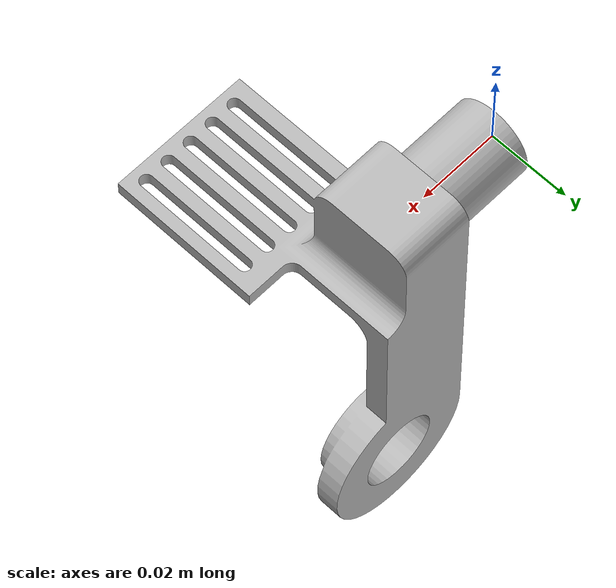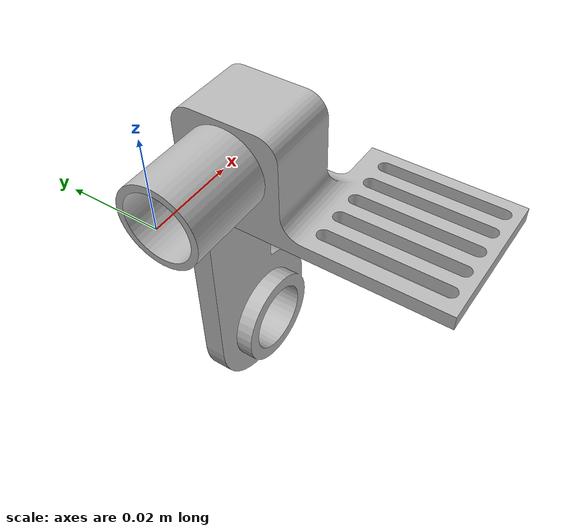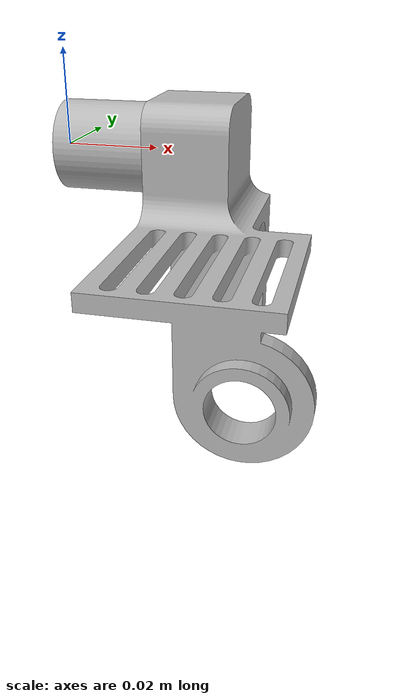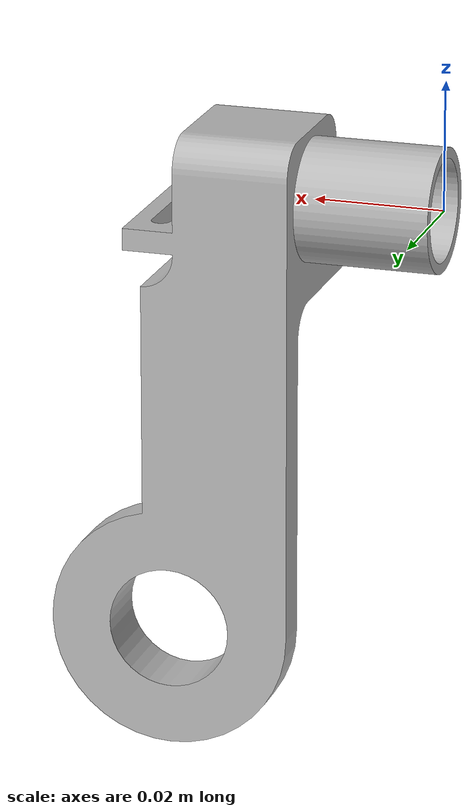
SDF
<sdf version='1.4'>
  <model name='rrbot'>
    <link name='leg1_pipebetweenhipandmotormountingbracket'>
      <pose>0 0 0 0 -0 0</pose>
      <inertial>
        <pose>-0.0621411 -0.185348 -0.184301 0 -0 0</pose>
        <mass>0.0576607</mass>
        <inertia>
          <ixx>0.0190732</ixx>
          <ixy>0.000163153</ixy>
          <ixz>-0.00016408</ixz>
          <iyy>0.425981</iyy>
          <iyz>0.00196654</iyz>
          <izz>0.425959</izz>
        </inertia>
      </inertial>
      <collision name='leg1_pipebetweenhipandmotormountingbracket_collision'>
        <pose>0 0 0 0 0 -1.57</pose>
        <geometry>
          <mesh>
            <scale>1 1 1</scale>
            <uri>model://rrbot_description/meshes/pipebetweenhipandmotormountingbracket.dae</uri>
          </mesh>
        </geometry>
      </collision>
      <collision name='leg1_pipebetweenhipandmotormountingbracket_collision_leg1_motormountingbracket_fixed'>
        <pose>0.03073 0 0 -1.57 0 0</pose>
        <geometry>
          <mesh>
            <scale>1 1 1</scale>
            <uri>model://rrbot_description/meshes/motormountingbracket_fixed.dae</uri>
          </mesh>
        </geometry>
      </collision>
      <visual name='leg1_pipebetweenhipandmotormountingbracket_visual'>
        <pose>0 0 0 0 0 -1.57</pose>
        <geometry>
          <mesh>
            <scale>1 1 1</scale>
            <uri>model://rrbot_description/meshes/pipebetweenhipandmotormountingbracket.dae</uri>
          </mesh>
        </geometry>
      </visual>
      <visual name='leg1_pipebetweenhipandmotormountingbracket_visual_leg1_motormountingbracket_fixed'>
        <pose>0.03073 0 0 -1.57 0 0</pose>
        <geometry>
          <mesh>
            <scale>1 1 1</scale>
            <uri>model://rrbot_description/meshes/motormountingbracket_fixed.dae</uri>
          </mesh>
        </geometry>
      </visual>
      <velocity_decay>
        <linear>0</linear>
        <angular>0</angular>
      </velocity_decay>
    </link>
  </model>
</sdf>
